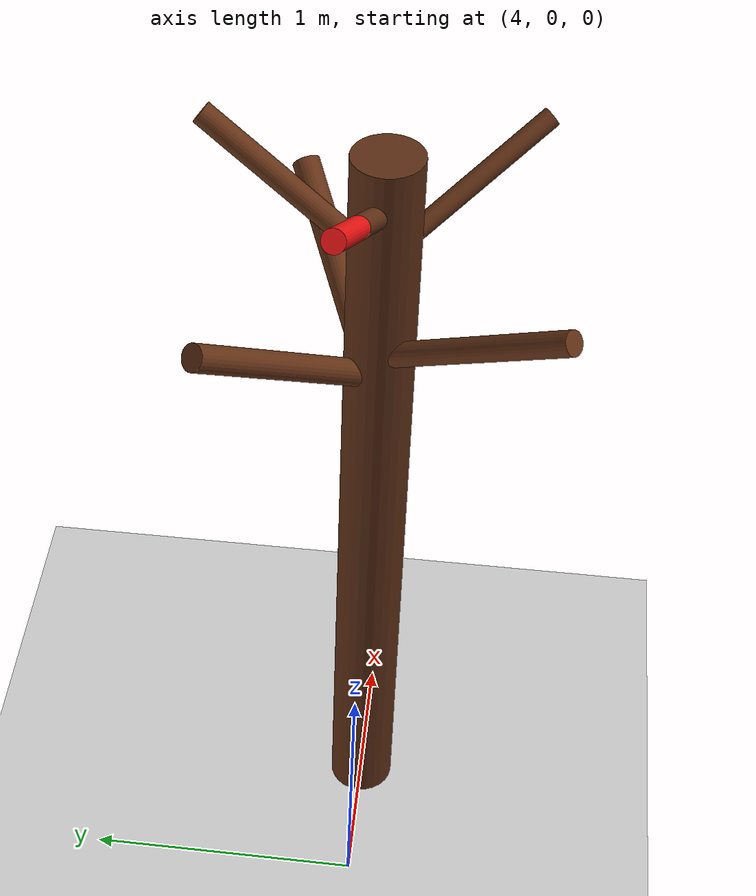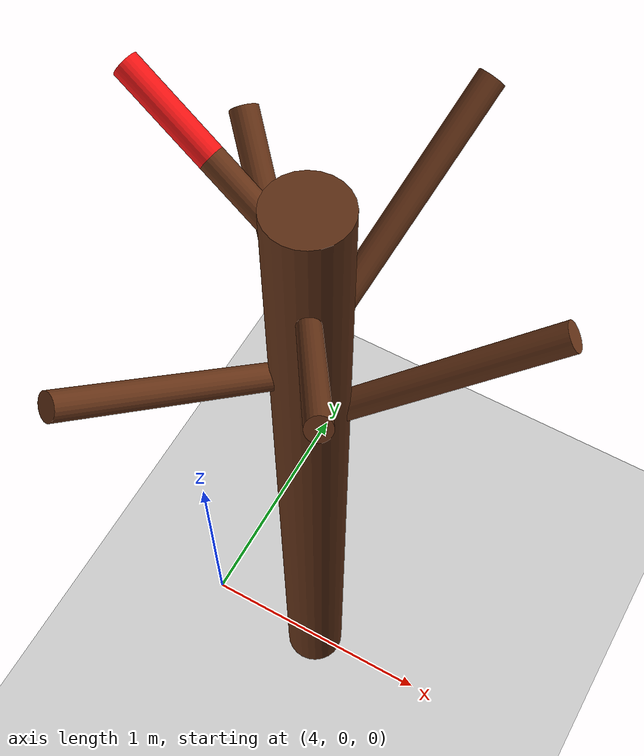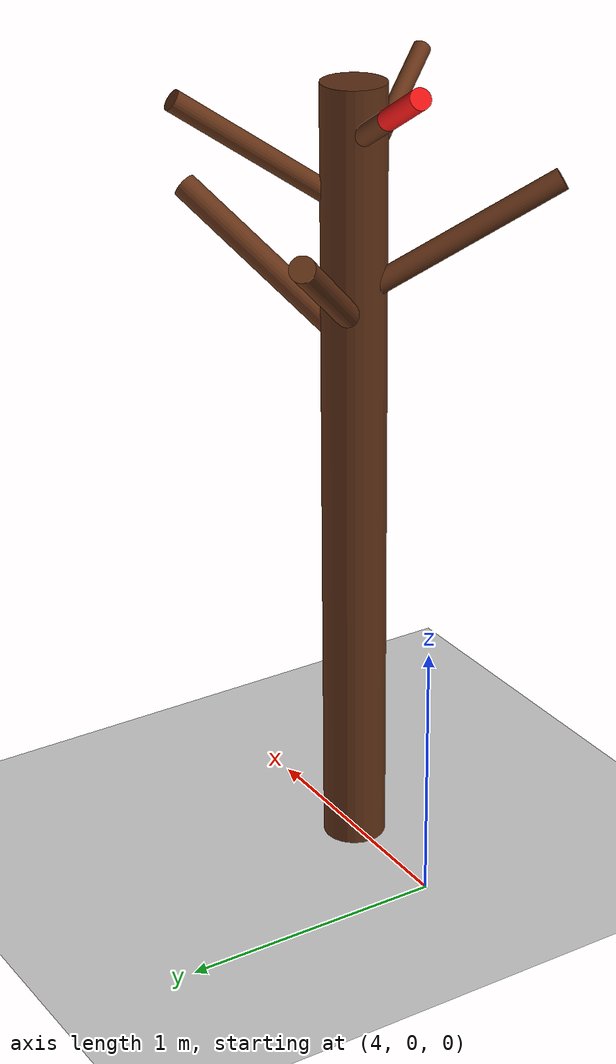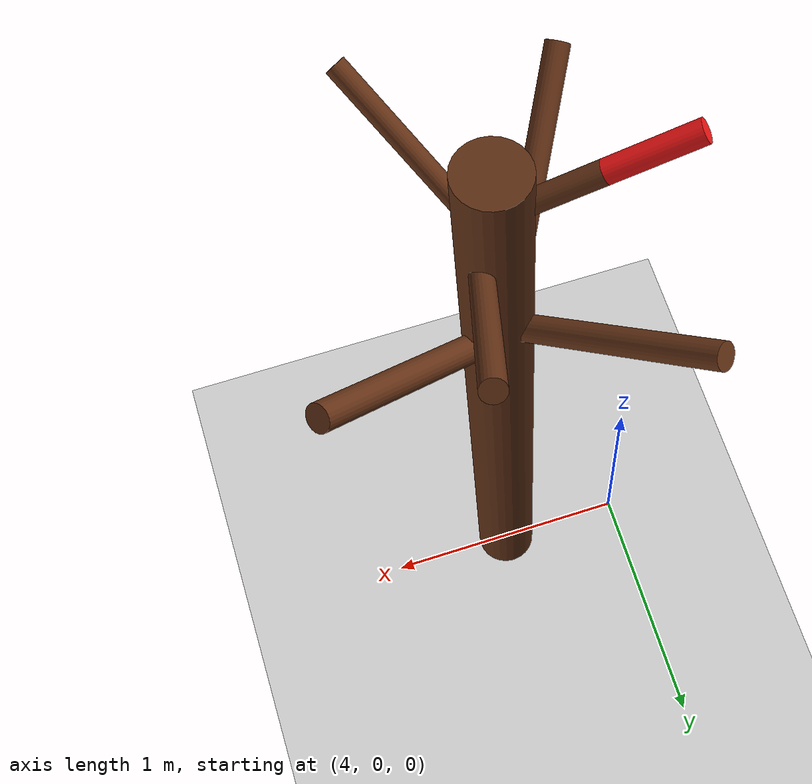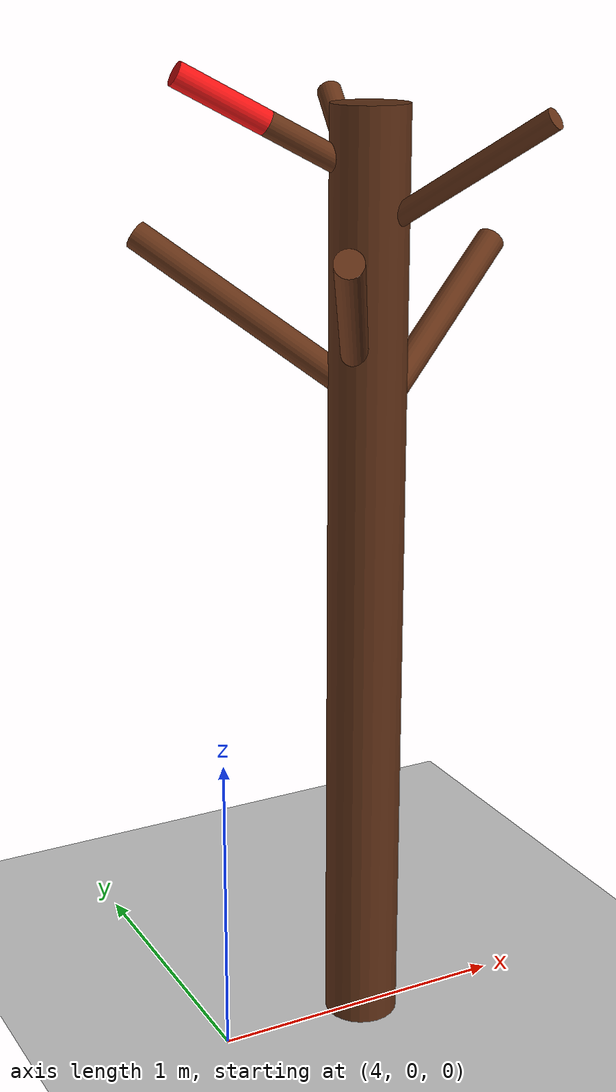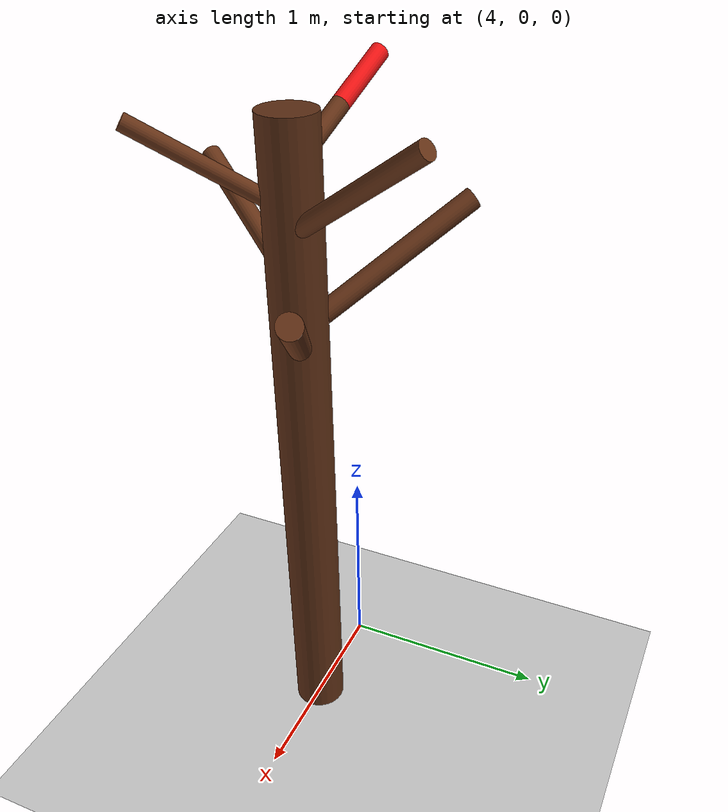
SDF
<sdf version="1.9">
 <world name="x500_lumberjack_world">
  <plugin filename="gz-sim-physics-system" name="gz::sim::systems::Physics"/>
  <plugin filename="gz-sim-user-commands-system" name="gz::sim::systems::UserCommands"/>
  <plugin filename="gz-sim-scene-broadcaster-system" name="gz::sim::systems::SceneBroadcaster"/>
  <plugin filename="gz-sim-sensors-system" name="gz::sim::systems::Sensors">
   <render_engine>ogre2</render_engine>
  </plugin>
  <plugin filename="gz-sim-contact-system" name="gz::sim::systems::Contact"/>
  <plugin filename="gz-sim-imu-system" name="gz::sim::systems::Imu"/>
  <plugin filename="gz-sim-magnetometer-system" name="gz::sim::systems::Magnetometer"/>
  <plugin filename="gz-sim-altimeter-system" name="gz::sim::systems::Altimeter"/>
  <plugin filename="gz-sim-navsat-system" name="gz::sim::systems::NavSat"/>
  <plugin filename="gz-sim-air-pressure-system" name="gz::sim::systems::AirPressure"/>
  <physics type="ode">
   <max_step_size>0.0025</max_step_size>
   <real_time_factor>1.0</real_time_factor>
   <real_time_update_rate>400</real_time_update_rate>
  </physics>
  <gravity>0 0 -9.81</gravity>
  <magnetic_field>6e-06 2.3e-05 -4.2e-05</magnetic_field>
  <atmosphere type="adiabatic"/>
  <scene>
   <grid>true</grid>
   <ambient>0.4 0.4 0.4 1</ambient>
   <background>0.7 0.7 0.7 1</background>
   <shadows>true</shadows>
  </scene>
  <model name="ground_plane">
   <static>true</static>
   <link name="link">
    <collision name="collision">
     <geometry><plane><normal>0 0 1</normal><size>100 100</size></plane></geometry>
    </collision>
    <visual name="visual">
     <geometry><plane><normal>0 0 1</normal><size>100 100</size></plane></geometry>
     <material><ambient>0.8 0.8 0.8 1</ambient><diffuse>0.8 0.8 0.8 1</diffuse></material>
    </visual>
   </link>
  </model>
  <light name="sun" type="directional">
   <pose>0 0 500 0 0 0</pose>
   <intensity>1</intensity>
   <direction>0.001 0.625 -0.78</direction>
   <diffuse>0.904 0.904 0.904 1</diffuse>
   <specular>0.271 0.271 0.271 1</specular>
  </light>
  <spherical_coordinates>
   <surface_model>EARTH_WGS84</surface_model>
   <world_frame_orientation>ENU</world_frame_orientation>
   <latitude_deg>24.623911</latitude_deg>
   <longitude_deg>118.087898</longitude_deg>
   <elevation>0</elevation>
  </spherical_coordinates>
  <include>
   <name>target_branch</name>
   <uri>model://target_branch</uri>
   <pose>4.195 0.060 2.950 0 1.08 2.961593</pose>
  </include>
  <include><name>test_tree</name><uri>model://test_tree</uri><pose>4.5 0 0 0 0 0</pose></include>
 </world>
</sdf>

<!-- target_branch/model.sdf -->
<sdf version="1.9">
  <model name="target_branch">

    <!-- Step10 detachable cutting target: RED OUTER SEGMENT ONLY -->
    <!-- Model frame stays at the cut plane / seam (local z = 0). -->
    <!-- The red cylinder extends from z = 0 to z = +0.30 m.      -->

    <static>false</static>
    <self_collide>false</self_collide>

    <link name="target_branch_link">

      <inertial>
        <pose>0 0 0.15 0 0 0</pose>
        <mass>0.9</mass>
        <inertia>
          <ixx>0.00698</ixx>
          <iyy>0.00698</iyy>
          <izz>0.00065</izz>
        </inertia>
      </inertial>

      <collision name="target_branch_outer_collision">
        <pose>0 0 0.15 0 0 0</pose>
        <geometry>
          <cylinder>
            <radius>0.038</radius>
            <length>0.30</length>
          </cylinder>
        </geometry>
      </collision>

      <visual name="target_branch_outer_visual">
        <pose>0 0 0.15 0 0 0</pose>
        <geometry>
          <cylinder>
            <radius>0.038</radius>
            <length>0.30</length>
          </cylinder>
        </geometry>
        <material>
          <ambient>0.70 0.05 0.05 1</ambient>
          <diffuse>0.95 0.08 0.08 1</diffuse>
          <specular>0.15 0.15 0.15 1</specular>
        </material>
      </visual>

    </link>

  </model>
</sdf>

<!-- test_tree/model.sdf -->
<sdf version="1.9">
  <model name="test_tree">

    <!-- Step 10 test tree (v3)                                 -->
    <!-- - lower branches: slightly longer / thicker            -->
    <!-- - upper branches: slightly shorter / thinner           -->
    <!-- - branches distributed more evenly around trunk        -->
    <!-- - all branches inserted slightly into trunk            -->
    <!-- - target branch split: fixed wood inner + detachable red outer -->

    <static>false</static>
    <self_collide>false</self_collide>

    <!-- Trunk                                                  -->

    <link name="trunk_link">
      <pose>0 0 1.50 0 0 0</pose>

      <inertial>
        <mass>40.0</mass>
        <inertia>
          <ixx>30.0</ixx>
          <iyy>30.0</iyy>
          <izz>0.30</izz>
        </inertia>
      </inertial>

      <collision name="trunk_collision">
        <geometry>
          <cylinder>
            <radius>0.12</radius>
            <length>3.00</length>
          </cylinder>
        </geometry>
      </collision>

      <visual name="trunk_visual">
        <geometry>
          <cylinder>
            <radius>0.12</radius>
            <length>3.00</length>
          </cylinder>
        </geometry>
        <material>
          <ambient>0.28 0.14 0.06 1</ambient>
          <diffuse>0.36 0.18 0.08 1</diffuse>
          <specular>0.08 0.08 0.08 1</specular>
        </material>
      </visual>
    </link>

    <joint name="trunk_world_joint" type="fixed">
      <parent>world</parent>
      <child>trunk_link</child>
    </joint>

    <!-- Branch 1                                               -->
    <!-- lower / front-right, longer and thicker               -->

    <link name="branch_1">
      <pose>0.285 0.145 2.250 0 0.98 0.47</pose>

      <inertial>
        <mass>2.2</mass>
        <inertia>
          <ixx>0.20</ixx>
          <iyy>0.20</iyy>
          <izz>0.01</izz>
        </inertia>
      </inertial>

      <collision name="branch_1_collision">
        <geometry>
          <cylinder>
            <radius>0.048</radius>
            <length>0.95</length>
          </cylinder>
        </geometry>
      </collision>

      <visual name="branch_1_visual">
        <geometry>
          <cylinder>
            <radius>0.048</radius>
            <length>0.95</length>
          </cylinder>
        </geometry>
        <material>
          <ambient>0.30 0.15 0.07 1</ambient>
          <diffuse>0.40 0.20 0.09 1</diffuse>
        </material>
      </visual>
    </link>

    <joint name="branch_1_joint" type="fixed">
      <parent>trunk_link</parent>
      <child>branch_1</child>
    </joint>

    <!-- Branch 2                                               -->
    <!-- lower / left-rear, longer and thicker                 -->

    <link name="branch_2">
      <pose>-0.255 0.260 2.350 0 1.02 2.35</pose>

      <inertial>
        <mass>2.0</mass>
        <inertia>
          <ixx>0.18</ixx>
          <iyy>0.18</iyy>
          <izz>0.01</izz>
        </inertia>
      </inertial>

      <collision name="branch_2_collision">
        <geometry>
          <cylinder>
            <radius>0.046</radius>
            <length>0.90</length>
          </cylinder>
        </geometry>
      </collision>

      <visual name="branch_2_visual">
        <geometry>
          <cylinder>
            <radius>0.046</radius>
            <length>0.90</length>
          </cylinder>
        </geometry>
        <material>
          <ambient>0.30 0.15 0.07 1</ambient>
          <diffuse>0.40 0.20 0.09 1</diffuse>
        </material>
      </visual>
    </link>

    <joint name="branch_2_joint" type="fixed">
      <parent>trunk_link</parent>
      <child>branch_2</child>
    </joint>

    <!-- Branch 4                                               -->
    <!-- middle / rear-right                                   -->

    <link name="branch_4">
      <pose>-0.220 -0.300 2.450 0 1.04 -2.10</pose>

      <inertial>
        <mass>1.8</mass>
        <inertia>
          <ixx>0.15</ixx>
          <iyy>0.15</iyy>
          <izz>0.008</izz>
        </inertia>
      </inertial>

      <collision name="branch_4_collision">
        <geometry>
          <cylinder>
            <radius>0.042</radius>
            <length>0.82</length>
          </cylinder>
        </geometry>
      </collision>

      <visual name="branch_4_visual">
        <geometry>
          <cylinder>
            <radius>0.042</radius>
            <length>0.82</length>
          </cylinder>
        </geometry>
        <material>
          <ambient>0.30 0.15 0.07 1</ambient>
          <diffuse>0.40 0.20 0.09 1</diffuse>
        </material>
      </visual>
    </link>

    <joint name="branch_4_joint" type="fixed">
      <parent>trunk_link</parent>
      <child>branch_4</child>
    </joint>

    <!-- Branch 5                                               -->
    <!-- middle / front-left                                   -->

    <link name="branch_5">
      <pose>0.115 0.295 2.760 0 0.96 1.34</pose>

      <inertial>
        <mass>1.6</mass>
        <inertia>
          <ixx>0.13</ixx>
          <iyy>0.13</iyy>
          <izz>0.007</izz>
        </inertia>
      </inertial>

      <collision name="branch_5_collision">
        <geometry>
          <cylinder>
            <radius>0.040</radius>
            <length>0.78</length>
          </cylinder>
        </geometry>
      </collision>

      <visual name="branch_5_visual">
        <geometry>
          <cylinder>
            <radius>0.040</radius>
            <length>0.78</length>
          </cylinder>
        </geometry>
        <material>
          <ambient>0.30 0.15 0.07 1</ambient>
          <diffuse>0.40 0.20 0.09 1</diffuse>
        </material>
      </visual>
    </link>

    <joint name="branch_5_joint" type="fixed">
      <parent>trunk_link</parent>
      <child>branch_5</child>
    </joint>

    <!-- Branch 6                                               -->
    <!-- high / right-rear, shorter and thinner                -->

    <link name="branch_6">
      <pose>0.150 -0.245 2.800 0 1.01 -1.00</pose>

      <inertial>
        <mass>1.3</mass>
        <inertia>
          <ixx>0.11</ixx>
          <iyy>0.11</iyy>
          <izz>0.006</izz>
        </inertia>
      </inertial>

      <collision name="branch_6_collision">
        <geometry>
          <cylinder>
            <radius>0.034</radius>
            <length>0.68</length>
          </cylinder>
        </geometry>
      </collision>

      <visual name="branch_6_visual">
        <geometry>
          <cylinder>
            <radius>0.034</radius>
            <length>0.68</length>
          </cylinder>
        </geometry>
        <material>
          <ambient>0.30 0.15 0.07 1</ambient>
          <diffuse>0.40 0.20 0.09 1</diffuse>
        </material>
      </visual>
    </link>

    <joint name="branch_6_joint" type="fixed">
      <parent>trunk_link</parent>
      <child>branch_6</child>
    </joint>

    <!-- Target branch inner / stump segment                     -->
    <!-- This 0.40 m wood-colored part stays permanently fixed   -->
    <!-- to the tree. Its local frame is exactly the old         -->
    <!-- target_branch frame, so the outer detachable red part   -->
    <!-- still lines up at local z = 0.                          -->

    <link name="target_branch_inner_link">
      <pose>-0.305 0.060 2.950 0 1.08 2.961593</pose>

      <inertial>
        <pose>0 0 -0.20 0 0 0</pose>
        <mass>1.2</mass>
        <inertia>
          <ixx>0.0164</ixx>
          <iyy>0.0164</iyy>
          <izz>0.00087</izz>
        </inertia>
      </inertial>

      <collision name="target_branch_inner_collision">
        <pose>0 0 -0.20 0 0 0</pose>
        <geometry>
          <cylinder>
            <radius>0.038</radius>
            <length>0.40</length>
          </cylinder>
        </geometry>
      </collision>

      <visual name="target_branch_inner_visual">
        <pose>0 0 -0.20 0 0 0</pose>
        <geometry>
          <cylinder>
            <radius>0.038</radius>
            <length>0.40</length>
          </cylinder>
        </geometry>
        <material>
          <ambient>0.30 0.15 0.07 1</ambient>
          <diffuse>0.40 0.20 0.09 1</diffuse>
        </material>
      </visual>
    </link>

    <joint name="target_branch_inner_joint" type="fixed">
      <parent>trunk_link</parent>
      <child>target_branch_inner_link</child>
    </joint>

    <!-- Detachable red outer segment                           -->
    <!-- target_branch now contains ONLY the outer 0.30 m red   -->
    <!-- segment. Detaching therefore drops only the red part.  -->

    <plugin
      filename="gz-sim-detachable-joint-system"
      name="gz::sim::systems::DetachableJoint">

      <parent_link>target_branch_inner_link</parent_link>
      <child_model>target_branch</child_model>
      <child_link>target_branch_link</child_link>

      <detach_topic>/target_branch/detach</detach_topic>
      <attach_topic>/target_branch/attach</attach_topic>
      <output_topic>/target_branch/state</output_topic>

    </plugin>

  </model>
</sdf>
